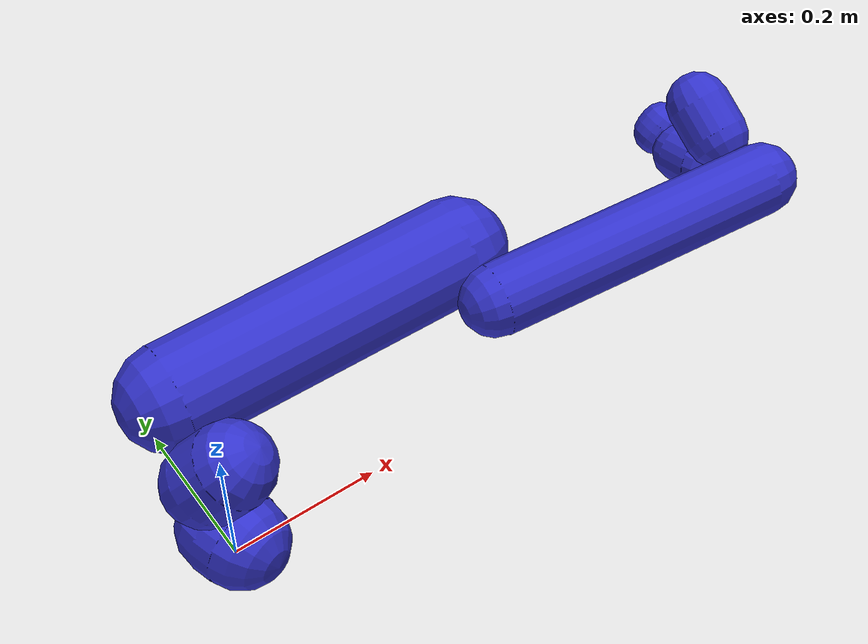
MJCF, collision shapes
<mujoco model="ur5e">
  <compiler angle="radian"/>
  <actuator>
    <motor ctrllimited="true" ctrlrange="-150.0 150.0" joint="shoulder_pan_joint" name="torq_j1"/>
    <motor ctrllimited="true" ctrlrange="-150.0 150.0" joint="shoulder_lift_joint" name="torq_j2"/>
    <motor ctrllimited="true" ctrlrange="-150.0 150.0" joint="elbow_joint" name="torq_j3"/>
    <motor ctrllimited="true" ctrlrange="-28.0 28.0" joint="wrist_1_joint" name="torq_j4"/>
    <motor ctrllimited="true" ctrlrange="-28.0 28.0" joint="wrist_2_joint" name="torq_j5"/>
    <motor ctrllimited="true" ctrlrange="-28.0 28.0" joint="wrist_3_joint" name="torq_j6"/>
  </actuator>
  <asset>
    <material name="Black" specular="0.5" shininess="0.25" rgba="0.033102 0.033102 0.033102 1.000000"/>
    <material name="JointGrey" specular="0.5" shininess="0.25" rgba="0.278431 0.278431 0.278431 1.000000"/>
    <material name="LinkGrey" specular="0.5" shininess="0.25" rgba="0.820392 0.820392 0.820392 1.000000"/>
    <material name="URBlue" specular="0.5" shininess="0.25" rgba="0.490196 0.678431 0.800000 1.000000"/>
    <mesh name="base_vis_0" file="obj_meshes/base_vis/base_vis_0.obj"/>
    <mesh name="base_vis_1" file="obj_meshes/base_vis/base_vis_1.obj"/>
    <mesh name="forearm_vis_0" file="obj_meshes/forearm_vis/forearm_vis_0.obj"/>
    <mesh name="forearm_vis_1" file="obj_meshes/forearm_vis/forearm_vis_1.obj"/>
    <mesh name="forearm_vis_2" file="obj_meshes/forearm_vis/forearm_vis_2.obj"/>
    <mesh name="forearm_vis_3" file="obj_meshes/forearm_vis/forearm_vis_3.obj"/>
    <mesh name="shoulder_vis_0" file="obj_meshes/shoulder_vis/shoulder_vis_0.obj"/>
    <mesh name="shoulder_vis_1" file="obj_meshes/shoulder_vis/shoulder_vis_1.obj"/>
    <mesh name="shoulder_vis_2" file="obj_meshes/shoulder_vis/shoulder_vis_2.obj"/>
    <mesh name="upperarm_vis_0" file="obj_meshes/upperarm_vis/upperarm_vis_0.obj"/>
    <mesh name="upperarm_vis_1" file="obj_meshes/upperarm_vis/upperarm_vis_1.obj"/>
    <mesh name="upperarm_vis_2" file="obj_meshes/upperarm_vis/upperarm_vis_2.obj"/>
    <mesh name="upperarm_vis_3" file="obj_meshes/upperarm_vis/upperarm_vis_3.obj"/>
    <mesh name="wrist1_vis_0" file="obj_meshes/wrist1_vis/wrist1_vis_0.obj"/>
    <mesh name="wrist1_vis_1" file="obj_meshes/wrist1_vis/wrist1_vis_1.obj"/>
    <mesh name="wrist1_vis_2" file="obj_meshes/wrist1_vis/wrist1_vis_2.obj"/>
    <mesh name="wrist2_vis_0" file="obj_meshes/wrist2_vis/wrist2_vis_0.obj"/>
    <mesh name="wrist2_vis_1" file="obj_meshes/wrist2_vis/wrist2_vis_1.obj"/>
    <mesh name="wrist2_vis_2" file="obj_meshes/wrist2_vis/wrist2_vis_2.obj"/>
    <mesh name="wrist3_vis" file="obj_meshes/wrist3_vis/wrist3_vis.obj"/>
    <mesh name="base" file="meshes/base.stl"/>
    <mesh name="shoulder" file="meshes/shoulder.stl"/>
    <mesh name="upperarm" file="meshes/upperarm.stl"/>
    <mesh name="forearm" file="meshes/forearm.stl"/>
    <mesh name="wrist1" file="meshes/wrist1.stl"/>
    <mesh name="wrist2" file="meshes/wrist2.stl"/>
    <mesh name="wrist3" file="meshes/wrist3.stl"/>
  </asset>
  <worldbody>
    <body name="base" pos="0 0 0">
      <camera mode="fixed" name="robotview" pos="1.0 0 0.4" quat="0.653 0.271 0.271 0.653"/>
      <inertial diaginertia="0 0 0" mass="0" pos="0 0 0"/>
      <body name="fixed_base_link" pos="0 0 0">
        <site name="right_center" pos="0 0 0" size="0.01" rgba="1 0.3 0.3 1" group="2"/>
        <geom mesh="base_vis_0" material="Black" type="mesh" contype="0" conaffinity="0" group="1"/>
        <geom mesh="base_vis_1" material="JointGrey" type="mesh" contype="0" conaffinity="0" group="1"/>
        <geom type="capsule" rgba="0.2 0.2 0.8 0.5" name="base_col" pos="0.000131 -0.000444 0.043171" quat="0.702678 0.682494 0.201111 0.000000" size="0.061082 0.014426"/>
        <body name="shoulder_link" pos="0 0 0.163">
          <inertial pos="0 0 0" mass="3.7" diaginertia="0.0102675 0.0102675 0.00666"/>
          <joint name="shoulder_pan_joint" pos="0 0 0" axis="0 0 1" limited="true" range="-6.28319 6.28319" damping="0.001" frictionloss="0.01"/>
          <geom mesh="shoulder_vis_0" material="URBlue" type="mesh" contype="0" conaffinity="0" group="1"/>
          <geom mesh="shoulder_vis_1" material="Black" type="mesh" contype="0" conaffinity="0" group="1"/>
          <geom mesh="shoulder_vis_2" material="JointGrey" type="mesh" contype="0" conaffinity="0" group="1"/>
          <geom type="capsule" rgba="0.2 0.2 0.8 0.5" name="shoulder_col" pos="0.000851 0.011843 -0.000326" quat="0.357794 -0.555044 -0.750940 0.000000" size="0.056262 0.025526"/>
          <body name="upper_arm_link" pos="0 0.138 0" quat="0.707107 0 0.707107 0">
            <inertial pos="0 0 0.2125" mass="8.393" diaginertia="0.133886 0.133886 0.0151074"/>
            <joint name="shoulder_lift_joint" pos="0 0 0" axis="0 1 0" limited="true" range="-6.28319 6.28319" damping="0.001" frictionloss="0.01"/>
            <geom mesh="upperarm_vis_0" material="LinkGrey" type="mesh" contype="0" conaffinity="0" group="1"/>
            <geom mesh="upperarm_vis_1" material="Black" type="mesh" contype="0" conaffinity="0" group="1"/>
            <geom mesh="upperarm_vis_2" material="JointGrey" type="mesh" contype="0" conaffinity="0" group="1"/>
            <geom mesh="upperarm_vis_3" material="URBlue" type="mesh" contype="0" conaffinity="0" group="1"/>
            <geom type="capsule" rgba="0.2 0.2 0.8 0.5" name="upperarm_col" pos="0.000014 -0.004378 0.211675" quat="0.013412 -0.998319 0.056383 0.000000" size="0.068845 0.203759"/>
            <body name="forearm_link" pos="0 -0.131 0.425">
              <inertial pos="0 0 0.196" mass="2.275" diaginertia="0.0311796 0.0311796 0.004095"/>
              <joint name="elbow_joint" pos="0 0 0" axis="0 1 0" limited="true" range="-3.14159 3.14159" damping="0.001" frictionloss="0.01"/>
              <geom mesh="forearm_vis_0" material="URBlue" type="mesh" contype="0" conaffinity="0" group="1"/>
              <geom mesh="forearm_vis_1" material="LinkGrey" type="mesh" contype="0" conaffinity="0" group="1"/>
              <geom mesh="forearm_vis_2" material="Black" type="mesh" contype="0" conaffinity="0" group="1"/>
              <geom mesh="forearm_vis_3" material="JointGrey" type="mesh" contype="0" conaffinity="0" group="1"/>
              <geom type="capsule" rgba="0.2 0.2 0.8 0.5" name="forearm_col" pos="-0.000021 0.008789 0.185373" quat="0.998993 0.044838 0.001273 0.000000" size="0.047386 0.199332"/>
              <body name="wrist_1_link" pos="0 0 0.392" quat="0.707107 0 0.707107 0">
                <inertial pos="0 0.127 0" mass="1.219" diaginertia="0.0025599 0.0025599 0.0021942"/>
                <joint name="wrist_1_joint" pos="0 0 0" axis="0 1 0" limited="true" range="-6.28319 6.28319" damping="0.001" frictionloss="0.01"/>
                <geom mesh="wrist1_vis_0" material="Black" type="mesh" contype="0" conaffinity="0" group="1"/>
                <geom mesh="wrist1_vis_1" material="URBlue" type="mesh" contype="0" conaffinity="0" group="1"/>
                <geom mesh="wrist1_vis_2" material="JointGrey" type="mesh" contype="0" conaffinity="0" group="1"/>
                <geom type="capsule" rgba="0.2 0.2 0.8 0.5" name="wrist1_col" pos="-0.000023 0.110451 0.000121" quat="0.854287 0.519669 0.011791 0.000000" size="0.043011 0.024671"/>
                <body name="wrist_2_link" pos="0 0.127 0">
                  <inertial pos="0 0 0.1" mass="1.219" diaginertia="0.0025599 0.0025599 0.0021942"/>
                  <joint name="wrist_2_joint" pos="0 0 0" axis="0 0 1" limited="true" range="-6.28319 6.28319" damping="0.001" frictionloss="0.01"/>
                  <geom mesh="wrist2_vis_0" material="Black" type="mesh" contype="0" conaffinity="0" group="1"/>
                  <geom mesh="wrist2_vis_1" material="URBlue" type="mesh" contype="0" conaffinity="0" group="1"/>
                  <geom mesh="wrist2_vis_2" material="JointGrey" type="mesh" contype="0" conaffinity="0" group="1"/>
                  <geom type="capsule" rgba="0.2 0.2 0.8 0.5" name="wrist2_col" pos="0.000032 0.001186 0.094251" quat="0.818272 -0.574425 0.021589 0.000000" size="0.040122 0.022966"/>
                  <body name="wrist_3_link" pos="0 0 0.1">
                    <inertial pos="0 0.0771683 0" quat="0.707107 0 0 0.707107" mass="0.1889" diaginertia="0.000132134 9.90863e-05 9.90863e-05"/>
                    <joint name="wrist_3_joint" pos="0 0 0" axis="0 1 0" limited="true" range="-6.28319 6.28319" damping="0.001" frictionloss="0.01"/>
                    <geom material="LinkGrey" mesh="wrist3_vis" type="mesh" contype="0" conaffinity="0" group="1"/>
                    <geom type="capsule" rgba="0.2 0.2 0.8 0.5" name="wrist3_col" pos="-0.000239 0.074440 -0.000297" quat="0.404430 -0.011651 -0.914495 0.000000" size="0.031489 0.006348"/>
                    <geom size="0.005 0.005 0.005" pos="0 0.09 0" quat="0.707107 0 0 0.707107" type="box" name="wrist3_col2"/>
                    <body name="right_hand" pos="0 0.098 0" quat="0.707 -0.707 0 0">
                      <camera mode="fixed" name="eye_in_hand" pos="0.05 0 0" quat="0 0.707108 0.707108 0" fovy="75"/>
                    </body>
                  </body>
                </body>
              </body>
            </body>
          </body>
        </body>
      </body>
    </body>
  </worldbody>
</mujoco>
